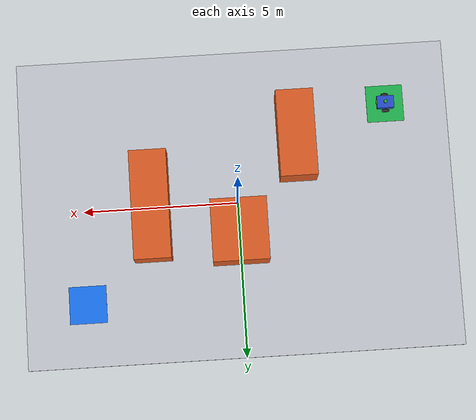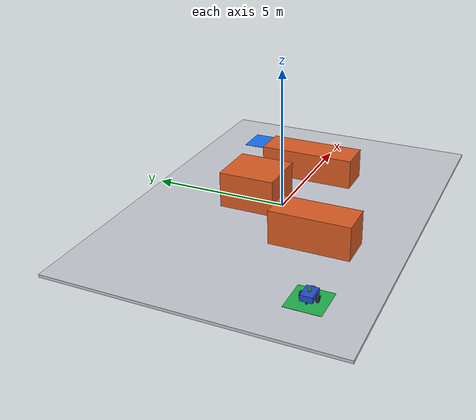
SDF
<sdf version="1.9">
  <world name="navigation">
    <physics name="default" type="ignored">
      <max_step_size>0.005</max_step_size>
      <real_time_factor>1.0</real_time_factor>
    </physics>
    <plugin filename="ignition-gazebo-physics-system" name="ignition::gazebo::systems::Physics" />
    <plugin filename="ignition-gazebo-user-commands-system" name="ignition::gazebo::systems::UserCommands" />
    <plugin filename="ignition-gazebo-scene-broadcaster-system" name="ignition::gazebo::systems::SceneBroadcaster" />
    <plugin filename="ignition-gazebo-sensors-system" name="ignition::gazebo::systems::Sensors">
      <render_engine>ogre2</render_engine>
    </plugin>
    <plugin filename="ignition-gazebo-navsat-system" name="ignition::gazebo::systems::NavSat" />
    <plugin filename="ignition-gazebo-contact-system" name="ignition::gazebo::systems::Contact" />
    <spherical_coordinates>
      <surface_model>EARTH_WGS84</surface_model>
      <world_frame_orientation>ENU</world_frame_orientation>
      <latitude_deg>55.75</latitude_deg>
      <longitude_deg>37.62</longitude_deg>
      <elevation>0.0</elevation>
      <heading_deg>0</heading_deg>
    </spherical_coordinates>
    <scene>
      <ambient>0.6 0.6 0.6 1</ambient>
      <background>0.88 0.91 0.94 1</background>
      <shadows>false</shadows>
    </scene>
    <light name="sun" type="directional">
      <pose>0 0 10 0 0 0</pose>
      <diffuse>0.9 0.9 0.9 1</diffuse>
      <direction>-0.4 -0.3 -1</direction>
      <cast_shadows>false</cast_shadows>
    </light>
    <model name="ground">
      <static>true</static>
      <pose>0 0 -0.05 0 0 0</pose>
      <link name="link">
        <visual name="visual">
          <geometry>
            <box>
              <size>14 10 0.1</size>
            </box>
          </geometry>
          <material>
            <ambient>0.77 0.79 0.82 1</ambient>
            <diffuse>0.77 0.79 0.82 1</diffuse>
          </material>
        </visual>
        <collision name="collision">
          <geometry>
            <box>
              <size>14 10 0.1</size>
            </box>
          </geometry>
        </collision>
      </link>
    </model>
    <model name="west_block">
      <static>true</static>
      <pose>-2.0 -2.0 0.6 0 0 0</pose>
      <link name="link">
        <visual name="visual">
          <geometry>
            <box>
              <size>1.2 2.8 1.2</size>
            </box>
          </geometry>
          <material>
            <ambient>0.86 0.36 0.14 1</ambient>
            <diffuse>0.86 0.36 0.14 1</diffuse>
          </material>
        </visual>
        <collision name="collision">
          <geometry>
            <box>
              <size>1.2 2.8 1.2</size>
            </box>
          </geometry>
        </collision>
      </link>
    </model>
    <model name="middle_block">
      <static>true</static>
      <pose>0.0 1.0 0.65 0 0 0</pose>
      <link name="link">
        <visual name="visual">
          <geometry>
            <box>
              <size>1.8 2.0 1.3</size>
            </box>
          </geometry>
          <material>
            <ambient>0.86 0.36 0.14 1</ambient>
            <diffuse>0.86 0.36 0.14 1</diffuse>
          </material>
        </visual>
        <collision name="collision">
          <geometry>
            <box>
              <size>1.8 2.0 1.3</size>
            </box>
          </geometry>
        </collision>
      </link>
    </model>
    <model name="east_block">
      <static>true</static>
      <pose>2.8 0.0 0.55 0 0 0</pose>
      <link name="link">
        <visual name="visual">
          <geometry>
            <box>
              <size>1.2 3.5 1.1</size>
            </box>
          </geometry>
          <material>
            <ambient>0.86 0.36 0.14 1</ambient>
            <diffuse>0.86 0.36 0.14 1</diffuse>
          </material>
        </visual>
        <collision name="collision">
          <geometry>
            <box>
              <size>1.2 3.5 1.1</size>
            </box>
          </geometry>
        </collision>
      </link>
    </model>
    <model name="start_A">
      <static>true</static>
      <pose>-5.0 -3.0 0.005 0 0 0</pose>
      <link name="link">
        <visual name="visual">
          <geometry>
            <box>
              <size>1.2 1.2 0.01</size>
            </box>
          </geometry>
          <material>
            <ambient>0.12 0.7 0.3 1</ambient>
            <diffuse>0.12 0.7 0.3 1</diffuse>
          </material>
        </visual>
      </link>
    </model>
    <model name="finish_B">
      <static>true</static>
      <pose>5.0 3.0 0.005 0 0 0</pose>
      <link name="link">
        <visual name="visual">
          <geometry>
            <box>
              <size>1.2 1.2 0.01</size>
            </box>
          </geometry>
          <material>
            <ambient>0.1 0.45 0.95 1</ambient>
            <diffuse>0.1 0.45 0.95 1</diffuse>
          </material>
        </visual>
      </link>
    </model>
    <include>
      <uri>model://rover</uri>
      <name>rover</name>
      <pose>-5.0 -3.0 0.205 0 0 0</pose>
    </include>
    <gui fullscreen="0">
      <plugin filename="MinimalScene" name="3D View">
        <ignition-gui>
          <title>3D View</title>
          <property type="bool" key="showTitleBar">false</property>
          <property type="string" key="state">docked</property>
        </ignition-gui>
        <engine>ogre2</engine>
        <scene>scene</scene>
        <ambient_light>0.6 0.6 0.6</ambient_light>
        <background_color>0.88 0.91 0.94</background_color>
        <camera_pose>0 -9 11 0 0.85 1.5708</camera_pose>
      </plugin>
      <plugin filename="GzSceneManager" name="Scene Manager">
        <ignition-gui>
          <property key="resizable" type="bool">false</property>
          <property key="showTitleBar" type="bool">false</property>
          <property key="state" type="string">floating</property>
          <property key="width" type="double">5</property>
          <property key="height" type="double">5</property>
        </ignition-gui>
      </plugin>
      <plugin filename="InteractiveViewControl" name="Interactive View">
        <ignition-gui>
          <property key="resizable" type="bool">false</property>
          <property key="showTitleBar" type="bool">false</property>
          <property key="state" type="string">floating</property>
          <property key="width" type="double">5</property>
          <property key="height" type="double">5</property>
        </ignition-gui>
      </plugin>
      <plugin filename="WorldControl" name="World Control">
        <ignition-gui>
          <property key="resizable" type="bool">false</property>
          <property key="showTitleBar" type="bool">false</property>
          <property key="state" type="string">floating</property>
          <property key="width" type="double">5</property>
          <property key="height" type="double">5</property>
        </ignition-gui>
        <start_paused>false</start_paused>
      </plugin>
    </gui>
  </world>
</sdf>

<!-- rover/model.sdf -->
<sdf version='1.9'>
  <model name='rover'>
    <link name='base_link'>
      <inertial>
        <pose>0 0 -0.003902439024390244 0 0 0</pose>
        <mass>8.1999999999999993</mass>
        <inertia>
          <ixx>0.086995121951219501</ixx>
          <ixy>0</ixy>
          <ixz>0</ixz>
          <iyy>0.1376751219512195</iyy>
          <iyz>0</iyz>
          <izz>0.17368</izz>
        </inertia>
      </inertial>
      <collision name='base_link_collision'>
        <pose>0 0 0 0 0 0</pose>
        <geometry>
          <box>
            <size>0.55 0.4 0.2</size>
          </box>
        </geometry>
        <surface>
          <contact>
            <ode/>
          </contact>
          <friction>
            <ode/>
          </friction>
        </surface>
      </collision>
      <collision name='base_link_fixed_joint_lump__front_caster_collision_1'>
        <pose>0.22 0 -0.16 0 0 0</pose>
        <geometry>
          <sphere>
            <radius>0.040000000000000001</radius>
          </sphere>
        </geometry>
        <surface>
          <contact>
            <ode/>
          </contact>
          <friction>
            <ode>
              <mu>0</mu>
              <mu2>0</mu2>
            </ode>
          </friction>
        </surface>
      </collision>
      <collision name='base_link_fixed_joint_lump__rear_caster_collision_2'>
        <pose>-0.22 0 -0.16 0 0 0</pose>
        <geometry>
          <sphere>
            <radius>0.040000000000000001</radius>
          </sphere>
        </geometry>
        <surface>
          <contact>
            <ode/>
          </contact>
          <friction>
            <ode>
              <mu>0</mu>
              <mu2>0</mu2>
            </ode>
          </friction>
        </surface>
      </collision>
      <visual name='base_link_visual'>
        <pose>0 0 0 0 0 0</pose>
        <geometry>
          <box>
            <size>0.55 0.4 0.2</size>
          </box>
        </geometry>
        <material>
          <script>
            <name>Gazebo/Blue</name>
            <uri>file://media/materials/scripts/gazebo.material</uri>
          </script>
          <diffuse>0.1 0.4375 0.9 1</diffuse>
          <ambient>0.1 0.4375 0.9 1</ambient>
        </material>
      </visual>
      <visual name='base_link_fixed_joint_lump__front_caster_visual_1'>
        <pose>0.22 0 -0.16 0 0 0</pose>
        <geometry>
          <sphere>
            <radius>0.040000000000000001</radius>
          </sphere>
        </geometry>
        <material>
          <script>
            <name>Gazebo/Black</name>
            <uri>file://media/materials/scripts/gazebo.material</uri>
          </script>
          <diffuse>0.15 0.175 0.2125 1</diffuse>
          <ambient>0.15 0.175 0.2125 1</ambient>
        </material>
      </visual>
      <visual name='base_link_fixed_joint_lump__rear_caster_visual_2'>
        <pose>-0.22 0 -0.16 0 0 0</pose>
        <geometry>
          <sphere>
            <radius>0.040000000000000001</radius>
          </sphere>
        </geometry>
        <material>
          <script>
            <name>Gazebo/Black</name>
            <uri>file://media/materials/scripts/gazebo.material</uri>
          </script>
          <diffuse>0.15 0.175 0.2125 1</diffuse>
          <ambient>0.15 0.175 0.2125 1</ambient>
        </material>
      </visual>
      <sensor name='base_link_contact' type='contact'>
        <always_on>true</always_on>
        <update_rate>30</update_rate>
        <contact>
          <collision>base_link_collision</collision>
          <collision>base_link_fixed_joint_lump__front_caster_collision_1</collision>
          <collision>base_link_fixed_joint_lump__rear_caster_collision_2</collision>
          <topic>/contacts/base_link</topic>
        </contact>
      </sensor>
    </link>
    <joint name='camera_link_joint' type='fixed'>
      <pose relative_to='base_link'>0.29 0 0.08 0 0 0</pose>
      <parent>base_link</parent>
      <child>camera_link</child>
      <axis>
        <dynamics>
          <spring_reference>0</spring_reference>
          <spring_stiffness>0</spring_stiffness>
        </dynamics>
        <xyz>0 0 1</xyz>
        <limit>
          <lower>-10000000000000000</lower>
          <upper>10000000000000000</upper>
        </limit>
      </axis>
      <physics>
        <ode>
          <limit>
            <cfm>0</cfm>
            <erp>0.20000000000000001</erp>
          </limit>
        </ode>
      </physics>
    </joint>
    <link name='camera_link'>
      <pose relative_to='camera_link_joint'>0 0 0 0 0 0</pose>
      <inertial>
        <pose>0 0 0 0 0 0</pose>
        <mass>0.050000000000000003</mass>
        <inertia>
          <ixx>0.00050000000000000001</ixx>
          <ixy>0</ixy>
          <ixz>0</ixz>
          <iyy>0.00075000000000000002</iyy>
          <iyz>0</iyz>
          <izz>0.001</izz>
        </inertia>
      </inertial>
      <visual name='camera_link_visual'>
        <pose>0 0 0 0 0 0</pose>
        <geometry>
          <box>
            <size>0.04 0.14 0.04</size>
          </box>
        </geometry>
        <material>
          <script>
            <name>Gazebo/Green</name>
            <uri>file://media/materials/scripts/gazebo.material</uri>
          </script>
          <diffuse>0.125 1 0.5 1</diffuse>
          <ambient>0.125 1 0.5 1</ambient>
        </material>
      </visual>
      <sensor name='astra' type='rgbd_camera'>
        <always_on>true</always_on>
        <update_rate>10</update_rate>
        <topic>/camera</topic>
        <camera>
          <horizontal_fov>1.0471999999999999</horizontal_fov>
          <image>
            <width>320</width>
            <height>240</height>
          </image>
          <clip>
            <near>0.14999999999999999</near>
            <far>6</far>
          </clip>
        </camera>
      </sensor>
    </link>
    <joint name='gps_link_joint' type='fixed'>
      <pose relative_to='base_link'>0 0 0.12 0 0 0</pose>
      <parent>base_link</parent>
      <child>gps_link</child>
      <axis>
        <dynamics>
          <spring_reference>0</spring_reference>
          <spring_stiffness>0</spring_stiffness>
        </dynamics>
        <xyz>0 0 1</xyz>
        <limit>
          <lower>-10000000000000000</lower>
          <upper>10000000000000000</upper>
        </limit>
      </axis>
      <physics>
        <ode>
          <limit>
            <cfm>0</cfm>
            <erp>0.20000000000000001</erp>
          </limit>
        </ode>
      </physics>
    </joint>
    <link name='gps_link'>
      <pose relative_to='gps_link_joint'>0 0 0 0 0 0</pose>
      <inertial>
        <pose>0 0 0 0 0 0</pose>
        <mass>0.050000000000000003</mass>
        <inertia>
          <ixx>0.00050000000000000001</ixx>
          <ixy>0</ixy>
          <ixz>0</ixz>
          <iyy>0.00075000000000000002</iyy>
          <iyz>0</iyz>
          <izz>0.001</izz>
        </inertia>
      </inertial>
      <visual name='gps_link_visual'>
        <pose>0 0 0 0 0 0</pose>
        <geometry>
          <box>
            <size>0.04 0.04 0.02</size>
          </box>
        </geometry>
        <material>
          <script>
            <name>Gazebo/Green</name>
            <uri>file://media/materials/scripts/gazebo.material</uri>
          </script>
          <diffuse>0.125 1 0.5 1</diffuse>
          <ambient>0.125 1 0.5 1</ambient>
        </material>
      </visual>
      <sensor name='gps' type='navsat'>
        <always_on>true</always_on>
        <update_rate>5</update_rate>
        <topic>/gps/fix</topic>
      </sensor>
    </link>
    <joint name='left_wheel_joint' type='revolute'>
      <pose relative_to='base_link'>0 0.26 -0.08 0 0 0</pose>
      <parent>base_link</parent>
      <child>left_wheel</child>
      <axis>
        <xyz>0 1 0</xyz>
        <limit>
          <lower>-10000000000000000</lower>
          <upper>10000000000000000</upper>
        </limit>
        <dynamics>
          <damping>0.01</damping>
          <friction>0.01</friction>
          <spring_reference>0</spring_reference>
          <spring_stiffness>0</spring_stiffness>
        </dynamics>
      </axis>
    </joint>
    <link name='left_wheel'>
      <pose relative_to='left_wheel_joint'>0 0 0 0 0 0</pose>
      <inertial>
        <pose>0 0 0 0 0 0</pose>
        <mass>0.59999999999999998</mass>
        <inertia>
          <ixx>0.0060000000000000001</ixx>
          <ixy>0</ixy>
          <ixz>0</ixz>
          <iyy>0.0089999999999999993</iyy>
          <iyz>0</iyz>
          <izz>0.012</izz>
        </inertia>
      </inertial>
      <collision name='left_wheel_collision'>
        <pose>0 0 0 1.57079632679 0 0</pose>
        <geometry>
          <cylinder>
            <length>0.059999999999999998</length>
            <radius>0.12</radius>
          </cylinder>
        </geometry>
        <surface>
          <contact>
            <ode/>
          </contact>
          <friction>
            <ode>
              <mu>1</mu>
              <mu2>1</mu2>
            </ode>
          </friction>
        </surface>
      </collision>
      <visual name='left_wheel_visual'>
        <pose>0 0 0 1.57079632679 0 0</pose>
        <geometry>
          <cylinder>
            <length>0.059999999999999998</length>
            <radius>0.12</radius>
          </cylinder>
        </geometry>
        <material>
          <script>
            <name>Gazebo/Black</name>
            <uri>file://media/materials/scripts/gazebo.material</uri>
          </script>
          <diffuse>0.15 0.175 0.2125 1</diffuse>
          <ambient>0.15 0.175 0.2125 1</ambient>
        </material>
      </visual>
      <sensor name='left_wheel_contact' type='contact'>
        <always_on>true</always_on>
        <update_rate>30</update_rate>
        <contact>
          <collision>left_wheel_collision</collision>
          <topic>/contacts/left_wheel</topic>
        </contact>
      </sensor>
    </link>
    <joint name='lidar_link_joint' type='fixed'>
      <pose relative_to='base_link'>0 0 0.15 0 0 0</pose>
      <parent>base_link</parent>
      <child>lidar_link</child>
      <axis>
        <dynamics>
          <spring_reference>0</spring_reference>
          <spring_stiffness>0</spring_stiffness>
        </dynamics>
        <xyz>0 0 1</xyz>
        <limit>
          <lower>-10000000000000000</lower>
          <upper>10000000000000000</upper>
        </limit>
      </axis>
      <physics>
        <ode>
          <limit>
            <cfm>0</cfm>
            <erp>0.20000000000000001</erp>
          </limit>
        </ode>
      </physics>
    </joint>
    <link name='lidar_link'>
      <pose relative_to='lidar_link_joint'>0 0 0 0 0 0</pose>
      <inertial>
        <pose>0 0 0 0 0 0</pose>
        <mass>0.050000000000000003</mass>
        <inertia>
          <ixx>0.00050000000000000001</ixx>
          <ixy>0</ixy>
          <ixz>0</ixz>
          <iyy>0.00075000000000000002</iyy>
          <iyz>0</iyz>
          <izz>0.001</izz>
        </inertia>
      </inertial>
      <visual name='lidar_link_visual'>
        <pose>0 0 0 0 0 0</pose>
        <geometry>
          <cylinder>
            <length>0.059999999999999998</length>
            <radius>0.055</radius>
          </cylinder>
        </geometry>
        <material>
          <script>
            <name>Gazebo/Green</name>
            <uri>file://media/materials/scripts/gazebo.material</uri>
          </script>
          <diffuse>0.125 1 0.5 1</diffuse>
          <ambient>0.125 1 0.5 1</ambient>
        </material>
      </visual>
      <sensor name='lidar' type='gpu_lidar'>
        <always_on>true</always_on>
        <update_rate>10</update_rate>
        <topic>/scan</topic>
        <visualize>false</visualize>
        <lidar>
          <scan>
            <horizontal>
              <samples>360</samples>
              <resolution>1</resolution>
              <min_angle>-3.1415926535897931</min_angle>
              <max_angle>3.1415926535897931</max_angle>
            </horizontal>
          </scan>
          <range>
            <min>0.12</min>
            <max>12</max>
            <resolution>0.01</resolution>
          </range>
        </lidar>
      </sensor>
    </link>
    <joint name='right_wheel_joint' type='revolute'>
      <pose relative_to='base_link'>0 -0.26 -0.08 0 0 0</pose>
      <parent>base_link</parent>
      <child>right_wheel</child>
      <axis>
        <xyz>0 1 0</xyz>
        <limit>
          <lower>-10000000000000000</lower>
          <upper>10000000000000000</upper>
        </limit>
        <dynamics>
          <damping>0.01</damping>
          <friction>0.01</friction>
          <spring_reference>0</spring_reference>
          <spring_stiffness>0</spring_stiffness>
        </dynamics>
      </axis>
    </joint>
    <link name='right_wheel'>
      <pose relative_to='right_wheel_joint'>0 0 0 0 0 0</pose>
      <inertial>
        <pose>0 0 0 0 0 0</pose>
        <mass>0.59999999999999998</mass>
        <inertia>
          <ixx>0.0060000000000000001</ixx>
          <ixy>0</ixy>
          <ixz>0</ixz>
          <iyy>0.0089999999999999993</iyy>
          <iyz>0</iyz>
          <izz>0.012</izz>
        </inertia>
      </inertial>
      <collision name='right_wheel_collision'>
        <pose>0 0 0 1.57079632679 0 0</pose>
        <geometry>
          <cylinder>
            <length>0.059999999999999998</length>
            <radius>0.12</radius>
          </cylinder>
        </geometry>
        <surface>
          <contact>
            <ode/>
          </contact>
          <friction>
            <ode>
              <mu>1</mu>
              <mu2>1</mu2>
            </ode>
          </friction>
        </surface>
      </collision>
      <visual name='right_wheel_visual'>
        <pose>0 0 0 1.57079632679 0 0</pose>
        <geometry>
          <cylinder>
            <length>0.059999999999999998</length>
            <radius>0.12</radius>
          </cylinder>
        </geometry>
        <material>
          <script>
            <name>Gazebo/Black</name>
            <uri>file://media/materials/scripts/gazebo.material</uri>
          </script>
          <diffuse>0.15 0.175 0.2125 1</diffuse>
          <ambient>0.15 0.175 0.2125 1</ambient>
        </material>
      </visual>
      <sensor name='right_wheel_contact' type='contact'>
        <always_on>true</always_on>
        <update_rate>30</update_rate>
        <contact>
          <collision>right_wheel_collision</collision>
          <topic>/contacts/right_wheel</topic>
        </contact>
      </sensor>
    </link>
    <plugin name='ignition::gazebo::systems::DiffDrive' filename='ignition-gazebo-diff-drive-system'>
      <left_joint>left_wheel_joint</left_joint>
      <right_joint>right_wheel_joint</right_joint>
      <wheel_separation>0.52</wheel_separation>
      <wheel_radius>0.12</wheel_radius>
      <topic>/cmd_vel</topic>
      <odom_topic>/odom</odom_topic>
      <tf_topic>/tf</tf_topic>
      <frame_id>odom</frame_id>
      <child_frame_id>base_link</child_frame_id>
      <odom_publish_frequency>30</odom_publish_frequency>
      <max_linear_acceleration>0.5</max_linear_acceleration>
      <max_angular_acceleration>1.5</max_angular_acceleration>
    </plugin>
    <plugin name='ignition::gazebo::systems::JointStatePublisher' filename='ignition-gazebo-joint-state-publisher-system'>
      <topic>/joint_states</topic>
      <joint_name>left_wheel_joint</joint_name>
      <joint_name>right_wheel_joint</joint_name>
    </plugin>
    <frame name='front_caster_joint' attached_to='base_link'>
      <pose>0.22 0 -0.16 0 -0 0</pose>
    </frame>
    <frame name='front_caster' attached_to='front_caster_joint'/>
    <frame name='rear_caster_joint' attached_to='base_link'>
      <pose>-0.22 0 -0.16 0 -0 0</pose>
    </frame>
    <frame name='rear_caster' attached_to='rear_caster_joint'/>
    <frame name='camera_optical_joint' attached_to='camera_link'>
      <pose>0 0 0 -1.5708 -0 -1.5708</pose>
    </frame>
    <frame name='camera_optical_link' attached_to='camera_optical_joint'/>
  </model>
</sdf>
